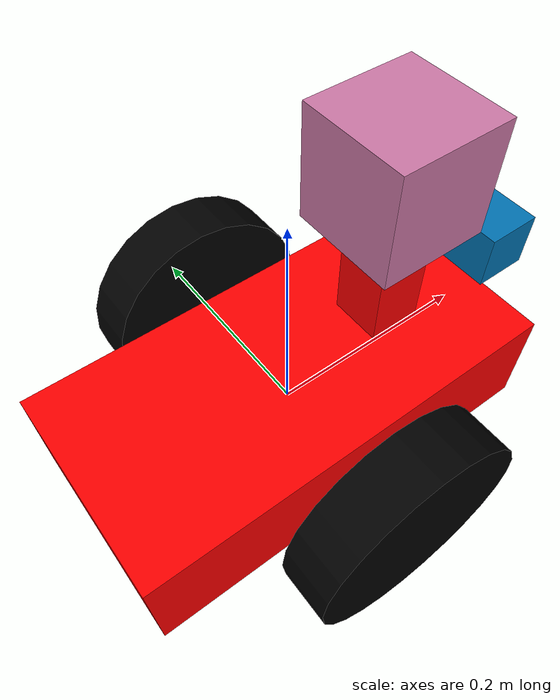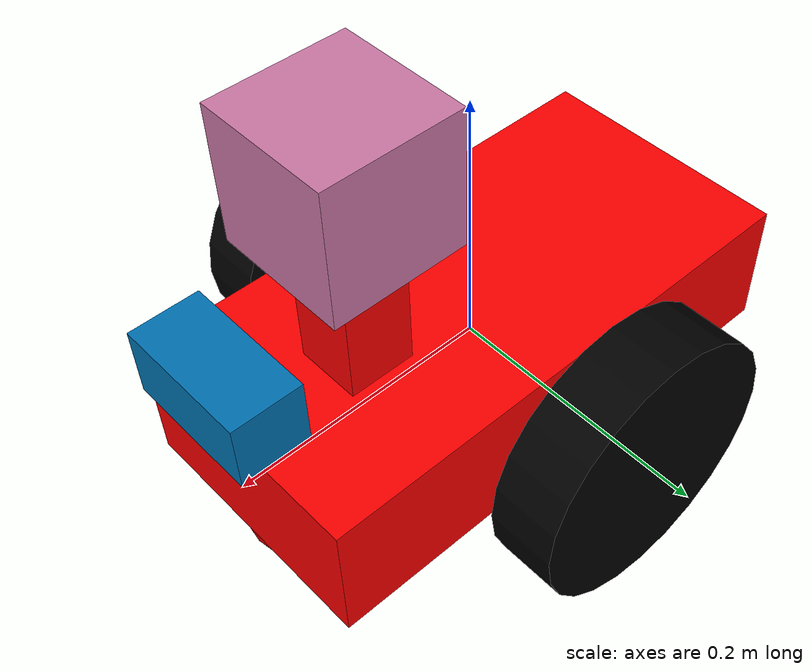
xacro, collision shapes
<robot name="udacity_bot" xmlns:xacro="http://www.ros.org/wiki/xacro">
<!-- sardor israilov -->
  <!-- import URDF files -->
  <xacro:include filename="$(find slam_project)/urdf/udacity_bot.gazebo" />
  <xacro:include filename="$(find slam_project)/urdf/properties.xacro"/>
  <!-- robot_footprint -->
  <link name="robot_footprint"></link>

  <joint name="robot_footprint_joint" type="fixed">
    <origin xyz="0 0 0" rpy="0 0 0" />
    <parent link="robot_footprint"/>
    <child link="chassis" />
  </joint>

  <!-- chassis -->
  <link name='chassis'>
    <pose>0 0 0.1 0 0 0</pose>

    <visual name='chassis_visual'>
      <origin xyz="0 0 0" rpy=" 0 0 0"/>
      <geometry>
        <box size=".4 .2 .1"/>
      </geometry>
      <material name="red"/>
    </visual>

    <inertial>
      <mass value="7.0"/>
      <origin xyz="0.0 0 0" rpy=" 0 0 0"/>
      <inertia
          ixx="0.1" ixy="0" ixz="0"
          iyy="0.1" iyz="0"
          izz="0.1"
      />
    </inertial>

    <collision name='collision'>
      <origin xyz="0 0 0" rpy=" 0 0 0"/>
      <geometry>
        <box size=".4 .2 .1"/>
      </geometry>
    </collision>

	<!-- support for hokuyo-->
	<visual name='chassis_visual'>
      <origin xyz="0.1 0 0.1" rpy=" 0 0 0"/>
      <geometry>
        <box size=".05 .05 .20"/>
      </geometry>
      <material name="red"/>
    </visual>

	<collision name='collision'>
      <origin xyz="0.1 0 0.1" rpy=" 0 0 0"/>
      <geometry>
        <box size=".05 .05 .20"/>
      </geometry>
    </collision>
    <!-- back_caster_collision -->

    <visual name='back_caster_visual'>
      <origin xyz="-0.15 0 -0.05" rpy=" 0 0 0"/>
      <geometry>
        <sphere radius="0.0498"/>
      </geometry>
    </visual>

    <collision name='back_caster_collision'>
      <origin xyz="-0.15 0 -0.05" rpy=" 0 0 0"/>
      <geometry>
        <sphere radius="0.0498"/>
      </geometry>
      <surface>
        <friction>
          <ode>
            <mu>0</mu>
            <mu2>0</mu2>
            <slip1>1.0</slip1>
            <slip2>1.0</slip2>
          </ode>
        </friction>
      </surface>
    </collision>

    <!-- front_caster_collision -->

    <visual name='front_caster_visual'>
      <origin xyz="0.15 0 -0.05" rpy=" 0 0 0"/>
      <geometry>
          <sphere radius="0.0498"/>
      </geometry>
    </visual>

    <collision name='front_caster_collision'>
      <origin xyz="0.15 0 -0.05" rpy=" 0 0 0"/>
      <geometry>
        <sphere radius="0.0498"/>
      </geometry>
      <surface>
        <friction>
          <ode>
            <mu>0</mu>
            <mu2>0</mu2>
            <slip1>1.0</slip1>
            <slip2>1.0</slip2>
          </ode>
        </friction>
      </surface>
    </collision>

  </link>
<!-- left_wheel -->

  <link name="left_wheel">

    <visual name='left_wheel_visual'>
      <origin xyz="0 0 0" rpy=" 0 1.5707 1.5707"/>
      <geometry>
        <cylinder radius="0.1" length="0.05"/>
      </geometry>
      <material name="black"/>
    </visual>

   <collision name='left_wheel_collision'>
      <origin xyz="0 0 0" rpy=" 0 1.5707 1.5707"/>
      <geometry>
        <cylinder radius="0.1" length="0.05"/>
      </geometry>
   </collision>

    <inertial>
      <mass value="5.0"/>
      <origin xyz="0.0 0 0" rpy=" 0 1.5707 1.5707"/>
      <inertia
          ixx="0.1" ixy="0" ixz="0"
          iyy="0.1" iyz="0"
          izz="0.1"
      />
    </inertial>

  </link>

  <joint type="continuous" name="left_wheel_hinge">
      <origin xyz="0 0.15 0" rpy="0 0 0"/>
      <child link="left_wheel"/>
      <parent link="chassis"/>
      <axis xyz="0 1 0" rpy="0 0 0"/>
      <limit effort="10000" velocity="1000"/>
      <joint_properties damping="1.0" friction="1.0"/>
  </joint>

  <!-- right_wheel -->

  <link name="right_wheel">

    <visual name='right_wheel_visual'>
      <origin xyz="0 0 0" rpy=" 0 1.5707 1.5707"/>
      <geometry>
        <cylinder radius="0.1" length="0.05"/>
      </geometry>
      <material name="black"/>
    </visual>

    <collision name='right_wheel_collision'>
      <origin xyz="0 0 0" rpy=" 0 1.5707 1.5707"/>
      <geometry>
        <cylinder radius="0.1" length="0.05"/>
      </geometry>
    </collision>

    <inertial>
      <mass value="5.0"/>
      <origin xyz="0.0 0 0" rpy=" 0 1.5707 1.5707"/>
      <inertia
          ixx="0.1" ixy="0" ixz="0"
          iyy="0.1" iyz="0"
          izz="0.1"
      />
    </inertial>

  </link>

  <joint type="continuous" name="right_wheel_hinge">
      <origin xyz="0 -0.15 0" rpy="0 0 0"/>
      <child link="right_wheel"/>
      <parent link="chassis"/>
      <axis xyz="0 1 0" rpy="0 0 0"/>
      <limit effort="10000" velocity="1000"/>
      <joint_properties damping="1.0" friction="1.0"/>
  </joint>
<!-- camera-->

   <link name="RGB_camera">

   <collision name='camera_collision'>
      <origin xyz="0 0 0" rpy=" 0 0 0"/>
      <geometry>
        <box size="0.05 0.1 0.05"/>
      </geometry>
    </collision>

    <inertial>
      <mass value="0.1"/>
      <origin xyz="0 0 0" rpy=" 0 0 0"/>
      <inertia
          ixx="1e-6" ixy="0" ixz="0"
          iyy="1e-6" iyz="0"
          izz="1e-6"
      />
    </inertial>

    <visual name='camera_visual'>
      <origin xyz="0 0 0" rpy=" 0 0 0"/>
      <geometry>
        <mesh filename="package://slam_project/meshes/kinect.dae"/>
      </geometry>
    </visual>

  </link>
  <!-- RGB camera joint -->
  <joint type="fixed" name="RGB_camera_joint">
      <origin xyz="0.2 0 0.1" rpy="0 0 0"/>
      <child link="RGB_camera"/>
      <parent link="chassis"/>
      <axis xyz="1 0 0" rpy="0 0 0"/>
  </joint>
  <link name="Depth_camera"></link>

  <!-- Depth camera joint -->
  <joint type="fixed" name="Depth_camera_joint">
      <origin xyz="0.2 0 0.1" rpy="${-3.141/2} 0 ${-3.141/2}"/>
      <child link="Depth_camera"/>
      <parent link="RGB_camera"/>
      <axis xyz="1 0 0" rpy="0 0 0"/>
  </joint>

<!-- hokuyo laser range finder -->

  <link name="hokuyo">
    <collision name='hokuyo_collision'>
      <origin xyz="0 0 0" rpy=" 0 0 0"/>
      <geometry>
        <box size="0.1 0.1 0.1"/>
      </geometry>
    </collision>

    <inertial>
      <mass value="0.1"/>
      <origin xyz="0 0 0" rpy=" 0 0 0"/>
      <inertia
          ixx="1e-6" ixy="0" ixz="0"
          iyy="1e-6" iyz="0"
          izz="1e-6"
      />
    </inertial>

    <visual name='hokuyo_visual'>
      <origin xyz="0 0 0" rpy=" 0 0 0"/>
      <geometry>
        <mesh filename="package://slam_project/meshes/hokuyo.dae"/>
      </geometry>
    </visual>
  </link>

  <joint type="fixed" name="hokuyo_joint">
      <origin xyz="0.1 0 0.20" rpy="0 0 0"/>
      <child link="hokuyo"/>
      <parent link="chassis"/>
      <axis xyz="1 0 0" rpy="0 0 0"/>
  </joint>

</robot>

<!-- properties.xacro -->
<robot name="udacity_bot" xmlns:xacro="http://www.ros.org/wiki/xacro">
  <material name="white">
	<color rgba="1.0 1.0 1.0 1.0"/>
	</material>
  <material name="black">
      <color rgba="0.0 0.0 0.0 1.0"/>
  </material>

  <material name="blue">
    <color rgba="0.0 0.0 1.0 1.0"/>
  </material>

  <material name="green">
    <color rgba="0.0 1.0 0.0 1.0"/>
  </material>

  <material name="red">
    <color rgba="1.0 0.0 0.0 1.0"/>
  </material>

</robot>
